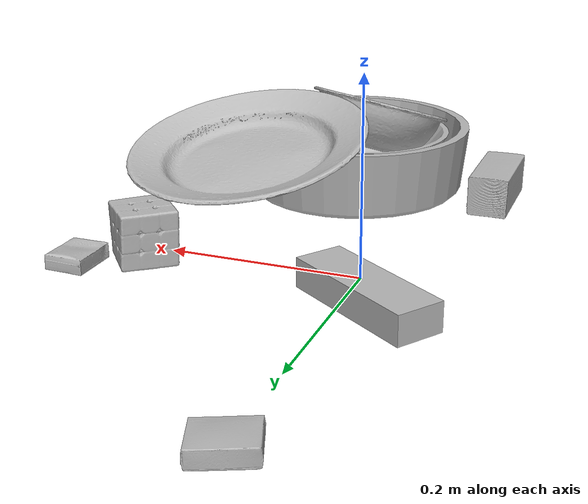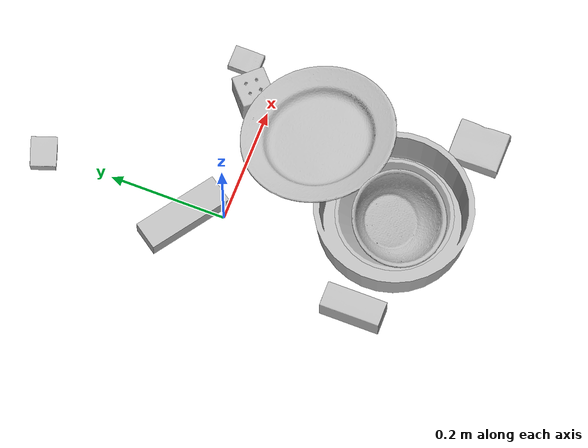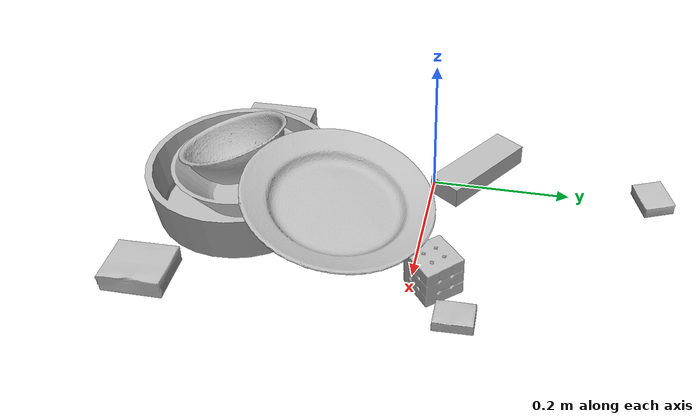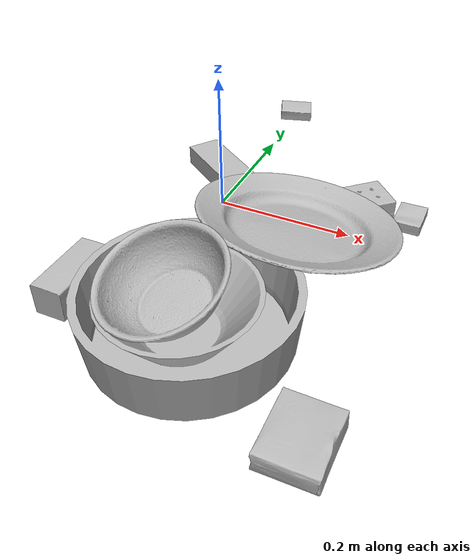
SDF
<sdf version="1.4">
  <world name="default">
    <light name="light1" type="point">
      <pose>0 0 1 0 0 0</pose>
      <diffuse>3 3 3 1</diffuse>
      <specular>3 3 3 1</specular>
    </light>
    <light name="light2" type="point">
      <pose>0 0.5 2 0 0 0</pose>
      <diffuse>1 1 1 1</diffuse>
      <specular>1 1 1 1</specular>
    </light>
    <light name="light3" type="point">
      <pose>0 0.5 2 0 0 0</pose>
      <diffuse>3 3 3 1</diffuse>
      <specular>3 3 3 1</specular>
    </light>
    <scene>
      <ambient>0.7 0.7 0.7</ambient>
    </scene>
    <model name="box1">
      <link name="link_box1">
        <collision name="default">
          <geometry>
            <mesh>
              <uri>model://pudding_box/collision_meshes/collision.obj</uri>
              <scale>0.5 0.5 0.5</scale>
            </mesh>
          </geometry>
          <surface>
            <friction>
              <ode>
                <mu>0.5</mu>
                <mu2>0.5</mu2>
              </ode>
            </friction>
          <contact>
        <ode>
            <max_vel>0</max_vel>
            <min_depth>0.0001</min_depth>
            <kp>1e8</kp>
        </ode>
    </contact></surface>
        </collision>
        <visual name="default">
          <geometry>
            <mesh>
              <uri>model://pudding_box/visual_meshes/visual.dae</uri>
              <scale>0.5 0.5 0.5</scale>
            </mesh>
          </geometry>
        </visual>
        <inertial>
          <mass>0.06043573096394539</mass>
          <pose>0.0002447410661261529 0.00040339428232982755 -0.0002594413817860186 0.005213102238104987 -0.006603800125102895 0.020079827017580043</pose>
          <inertia>
            <ixx>1.707987e-05</ixx>
            <iyy>1.1491458e-05</iyy>
            <izz>2.522289e-05</izz>
            <ixy>0</ixy>
            <ixz>0</ixz>
            <iyz>0</iyz>
          </inertia>
        </inertial>
      </link>
      <pose>-0.004570980556309223 0.31956157088279724 0.00986290629953146 0.022348557517411275 -0.011391730762289215 1.9229357126775963</pose>
    </model>
    <model name="box11">
      <link name="link_box11">
        <collision name="default">
          <geometry>
            <mesh>
              <uri>model://wood_block/collision_meshes/collision.obj</uri>
              <scale>0.5 0.5 0.5</scale>
            </mesh>
          </geometry>
          <surface>
            <friction>
              <ode>
                <mu>0.5</mu>
                <mu2>0.5</mu2>
              </ode>
            </friction>
          <contact>
        <ode>
            <max_vel>0</max_vel>
            <min_depth>0.0001</min_depth>
            <kp>1e8</kp>
        </ode>
    </contact></surface>
        </collision>
        <visual name="default">
          <geometry>
            <mesh>
              <uri>model://wood_block/visual_meshes/visual.dae</uri>
              <scale>0.5 0.5 0.5</scale>
            </mesh>
          </geometry>
        </visual>
        <inertial>
          <mass>0.22556793689727783</mass>
          <pose>-2.9066577553749084e-06 -0.000285404734313488 0.00013204290007706732 -0.05220975528916272 -0.005192696013017626 -0.0068613779154948285</pose>
          <inertia>
            <ixx>7.5461e-05</ixx>
            <iyy>0.00023838133</iyy>
            <izz>0.00023748967</izz>
            <ixy>0</ixy>
            <ixz>0</ixz>
            <iyz>0</iyz>
          </inertia>
        </inertial>
      </link>
      <pose>-0.07841942459344864 -0.25724709033966064 0.02262926660478115 -0.005208443237370053 0.0057188299827391886 1.5743595272540778</pose>
    </model>
    <model name="box2">
      <link name="link_box2">
        <collision name="default">
          <geometry>
            <mesh>
              <uri>model://jenga/collision_meshes/collision.obj</uri>
              <scale>1.0 1.0 1.0</scale>
            </mesh>
          </geometry>
          <surface>
            <friction>
              <ode>
                <mu>0.5</mu>
                <mu2>0.5</mu2>
              </ode>
            </friction>
          <contact>
        <ode>
            <max_vel>0</max_vel>
            <min_depth>0.0001</min_depth>
            <kp>1e8</kp>
        </ode>
    </contact></surface>
        </collision>
        <visual name="default">
          <geometry>
            <mesh>
              <uri>model://jenga/visual_meshes/visual.dae</uri>
              <scale>1.0 1.0 1.0</scale>
            </mesh>
          </geometry>
        </visual>
        <inertial>
          <mass>0.2534179985523224</mass>
          <pose>-2.502856091268768e-07 -0.00010250010382151231 -4.0923401684267446e-05 0.0 -7.342154049184251e-07 0.0</pose>
          <inertia>
            <ixx>7.012692e-05</ixx>
            <iyy>0.00047517804</iyy>
            <izz>0.000507293</izz>
            <ixy>0</ixy>
            <ixz>0</ixz>
            <iyz>0</iyz>
          </inertia>
        </inertial>
      </link>
      <pose>-0.025318408384919167 0.06183652952313423 0.015000000596046448 -5.962099756253375e-09 1.6472373666418221e-09 2.536684055968472</pose>
    </model>
    <model name="box21">
      <link name="link_box21">
        <collision name="default">
          <geometry>
            <mesh>
              <uri>model://cracker_box/collision_meshes/collision.obj</uri>
              <scale>0.25 0.25 0.25</scale>
            </mesh>
          </geometry>
          <surface>
            <friction>
              <ode>
                <mu>0.5</mu>
                <mu2>0.5</mu2>
              </ode>
            </friction>
          <contact>
        <ode>
            <max_vel>0</max_vel>
            <min_depth>0.0001</min_depth>
            <kp>1e8</kp>
        </ode>
    </contact></surface>
        </collision>
        <visual name="default">
          <geometry>
            <mesh>
              <uri>model://cracker_box/visual_meshes/visual.dae</uri>
              <scale>0.25 0.25 0.25</scale>
            </mesh>
          </geometry>
        </visual>
        <inertial>
          <mass>0.04045860841870308</mass>
          <pose>0.0002366030093980953 6.358561950037256e-05 -0.0004257383698131889 -0.0003162076898946344 -0.011106488668808423 0.0025467959335197018</pose>
          <inertia>
            <ixx>6.4317906e-06</ixx>
            <iyy>1.062015e-05</iyy>
            <izz>1.5155927e-05</izz>
            <ixy>0</ixy>
            <ixz>0</ixz>
            <iyz>0</iyz>
          </inertia>
        </inertial>
      </link>
      <pose>0.27161577343940735 0.06564961373806 0.009120448492467403 -0.011788322649165295 -0.007367403019708134 1.5653976389898436</pose>
    </model>
    <model name="box3">
      <link name="link_box3">
        <collision name="default">
          <geometry>
            <mesh>
              <uri>model://rubiks_cube/collision_meshes/collision.obj</uri>
              <scale>1.0 1.0 1.0</scale>
            </mesh>
          </geometry>
          <surface>
            <friction>
              <ode>
                <mu>0.5</mu>
                <mu2>0.5</mu2>
              </ode>
            </friction>
          <contact>
        <ode>
            <max_vel>0</max_vel>
            <min_depth>0.0001</min_depth>
            <kp>1e8</kp>
        </ode>
    </contact></surface>
        </collision>
        <visual name="default">
          <geometry>
            <mesh>
              <uri>model://rubiks_cube/visual_meshes/visual.dae</uri>
              <scale>1.0 1.0 1.0</scale>
            </mesh>
          </geometry>
        </visual>
        <inertial>
          <mass>0.12779320776462555</mass>
          <pose>2.6721041649580002e-05 5.2569666877388954e-05 -7.264316082000732e-06 -0.054672129212199855 -0.09814057073985563 -0.03445704008669109</pose>
          <inertia>
            <ixx>7.061434e-05</ixx>
            <iyy>7.0285016e-05</iyy>
            <izz>7.119949e-05</izz>
            <ixy>0</ixy>
            <ixz>0</ixz>
            <iyz>0</iyz>
          </inertia>
        </inertial>
      </link>
      <pose>0.21512344479560852 0.030462805181741714 0.028678936883807182 -5.177602693367289e-06 -1.9542534209853815e-06 -0.8392280731695586</pose>
    </model>
    <model name="box31">
      <link name="link_box31">
        <collision name="default">
          <geometry>
            <mesh>
              <uri>model://gelatin_box/collision_meshes/collision.obj</uri>
              <scale>1.0 1.0 1.0</scale>
            </mesh>
          </geometry>
          <surface>
            <friction>
              <ode>
                <mu>0.5</mu>
                <mu2>0.5</mu2>
              </ode>
            </friction>
          <contact>
        <ode>
            <max_vel>0</max_vel>
            <min_depth>0.0001</min_depth>
            <kp>1e8</kp>
        </ode>
    </contact></surface>
        </collision>
        <visual name="default">
          <geometry>
            <mesh>
              <uri>model://gelatin_box/visual_meshes/visual.dae</uri>
              <scale>1.0 1.0 1.0</scale>
            </mesh>
          </geometry>
        </visual>
        <inertial>
          <mass>0.20050984621047974</mass>
          <pose>0.0004319618456065655 0.00011156872642459348 -0.00036403213744051754 -0.0010503720853528096 -0.004755817758068365 0.016440559471334753</pose>
          <inertia>
            <ixx>0.00014154361</ixx>
            <iyy>0.00010110386</iyy>
            <izz>0.0002154609</izz>
            <ixy>0</ixy>
            <ixz>0</ixz>
            <iyz>0</iyz>
          </inertia>
        </inertial>
      </link>
      <pose>0.26305902004241943 -0.3531489074230194 0.015168311074376106 0.005597403648569826 -0.007304497170293774 -0.006445276936378428</pose>
    </model>
    <model name="plate1">
      <link name="link_plate1">
        <collision name="default">
          <geometry>
            <mesh>
              <uri>model://pan_tefal/collision_meshes/collision.obj</uri>
              <scale>1.0 1.0 1.0</scale>
            </mesh>
          </geometry>
          <surface>
            <friction>
              <ode>
                <mu>0.5</mu>
                <mu2>0.5</mu2>
              </ode>
            </friction>
          <contact>
        <ode>
            <max_vel>0</max_vel>
            <min_depth>0.0001</min_depth>
            <kp>1e8</kp>
        </ode>
    </contact></surface>
        </collision>
        <visual name="default">
          <geometry>
            <mesh>
              <uri>model://pan_tefal/visual_meshes/visual.dae</uri>
              <scale>1.0 1.0 1.0</scale>
            </mesh>
          </geometry>
        </visual>
        <inertial>
          <mass>0.9166961908340454</mass>
          <pose>-0.00018002631259150803 3.279098018538207e-05 -0.00851493515074253 0.0008190256602529888 -0.0003301357182707761 -0.33185348708971</pose>
          <inertia>
            <ixx>0.006327908</ixx>
            <iyy>0.006368705</iyy>
            <izz>0.01164846</izz>
            <ixy>0</ixy>
            <ixz>0</ixz>
            <iyz>0</iyz>
          </inertia>
        </inertial>
      </link>
      <pose>0.09225478768348694 -0.26343226432800293 0.038050003349781036 3.87097871244527e-09 3.0904536594833396e-08 0.5692189117560364</pose>
    </model>
    <model name="bowl1">
      <link name="link_bowl1">
        <collision name="default">
          <geometry>
            <mesh>
              <uri>model://bowl_a/collision_meshes/collision.obj</uri>
              <scale>1.0 1.0 1.0</scale>
            </mesh>
          </geometry>
          <surface>
            <friction>
              <ode>
                <mu>0.5</mu>
                <mu2>0.5</mu2>
              </ode>
            </friction>
          <contact>
        <ode>
            <max_vel>0</max_vel>
            <min_depth>0.0001</min_depth>
            <kp>1e8</kp>
        </ode>
    </contact></surface>
        </collision>
        <visual name="default">
          <geometry>
            <mesh>
              <uri>model://bowl_a/visual_meshes/visual.dae</uri>
              <scale>1.0 1.0 1.0</scale>
            </mesh>
          </geometry>
        </visual>
        <inertial>
          <mass>0.44606471061706543</mass>
          <pose>0.0002786746481433511 4.7312179958680645e-05 -0.0013765294570475817 -0.0009805488171165768 -0.0010938123304380014 -0.19122487556540352</pose>
          <inertia>
            <ixx>0.0012699668</ixx>
            <iyy>0.001277764</iyy>
            <izz>0.0022586845</izz>
            <ixy>0</ixy>
            <ixz>0</ixz>
            <iyz>0</iyz>
          </inertia>
        </inertial>
      </link>
      <pose>0.08208572119474411 -0.26823344826698303 0.03817211836576462 -0.002022724589212049 -0.0011035389493063601 1.0495547024740428</pose>
    </model>
    <model name="plate2">
      <link name="link_plate2">
        <collision name="default">
          <geometry>
            <mesh>
              <uri>model://plate/collision_meshes/collision.obj</uri>
              <scale>1.0 1.0 1.0</scale>
            </mesh>
          </geometry>
          <surface>
            <friction>
              <ode>
                <mu>0.5</mu>
                <mu2>0.5</mu2>
              </ode>
            </friction>
          <contact>
        <ode>
            <max_vel>0</max_vel>
            <min_depth>0.0001</min_depth>
            <kp>1e8</kp>
        </ode>
    </contact></surface>
        </collision>
        <visual name="default">
          <geometry>
            <mesh>
              <uri>model://plate/visual_meshes/visual.dae</uri>
              <scale>1.0 1.0 1.0</scale>
            </mesh>
          </geometry>
        </visual>
        <inertial>
          <mass>0.10088177025318146</mass>
          <pose>-0.0006044645560905337 0.0002782582596410066 -0.0010561994276940823 0.002218810424575964 -0.003225458488037908 0.4526011088858205</pose>
          <inertia>
            <ixx>0.00047192685</ixx>
            <iyy>0.00046741302</iyy>
            <izz>0.00092301855</izz>
            <ixy>0</ixy>
            <ixz>0</ixz>
            <iyz>0</iyz>
          </inertia>
        </inertial>
      </link>
      <pose>0.1610812097787857 -0.10611599683761597 0.0803200975060463 0.12778347549364924 -0.17340168211472454 -2.5591612920259768</pose>
    </model>
    <model name="bowl2">
      <link name="link_bowl2">
        <collision name="default">
          <geometry>
            <mesh>
              <uri>model://bowl/collision_meshes/collision.obj</uri>
              <scale>1.0 1.0 1.0</scale>
            </mesh>
          </geometry>
          <surface>
            <friction>
              <ode>
                <mu>0.5</mu>
                <mu2>0.5</mu2>
              </ode>
            </friction>
          <contact>
        <ode>
            <max_vel>0</max_vel>
            <min_depth>0.0001</min_depth>
            <kp>1e8</kp>
        </ode>
    </contact></surface>
        </collision>
        <visual name="default">
          <geometry>
            <mesh>
              <uri>model://bowl/visual_meshes/visual.dae</uri>
              <scale>1.0 1.0 1.0</scale>
            </mesh>
          </geometry>
        </visual>
        <inertial>
          <mass>0.10570208728313446</mass>
          <pose>0.00020445376867428422 -0.00103021040558815 -0.000804263399913907 -0.015764090239829616 0.014546785988443214 0.7140402180265782</pose>
          <inertia>
            <ixx>0.00024280604</ixx>
            <iyy>0.0002373808</iyy>
            <izz>0.0004084832</izz>
            <ixy>0</ixy>
            <ixz>0</ixz>
            <iyz>0</iyz>
          </inertia>
        </inertial>
      </link>
      <pose>0.0714234933257103 -0.2734248638153076 0.07336358726024628 0.23505181718923007 -0.2546925515496674 0.3802154574072694</pose>
    </model>
  <physics type="ode">
      <max_contacts>50</max_contacts>
      <ode>
        <solver>
          <type>quick</type>
          <iters>75</iters>
        </solver>
        <constraints>
          <contact_max_correcting_vel>0</contact_max_correcting_vel>
          <contact_surface_layer>0</contact_surface_layer>
        </constraints>
      </ode>
    </physics></world>
</sdf>
